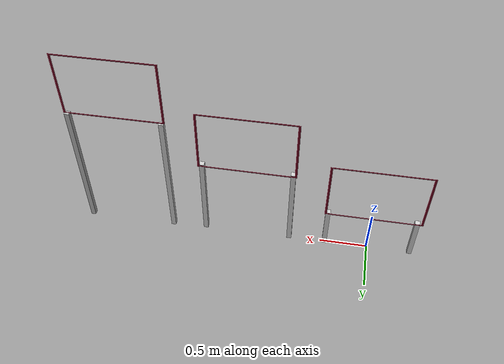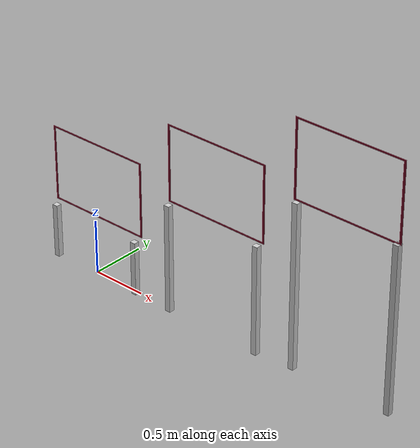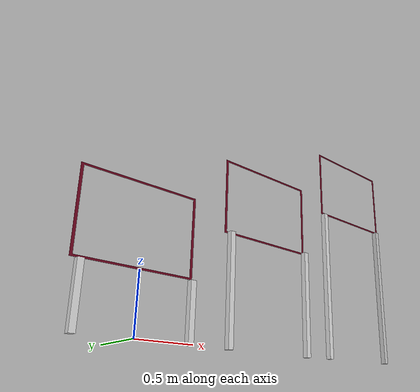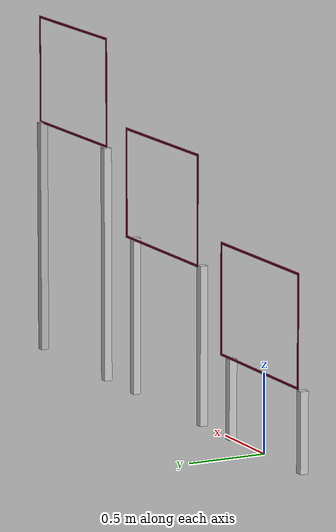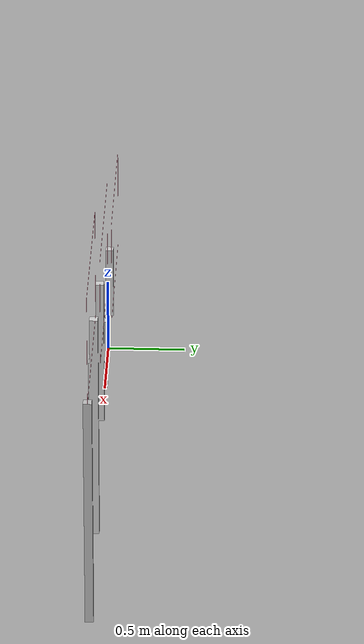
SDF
<?xml version="1.0"?>
<sdf version="1.6">
  <model name="race">
    <static>true</static>

    <link name="link">
      <visual name="visual">
        <geometry>
          <mesh>
          <uri>model://race/meshes/race.dae</uri>
          </mesh>
        </geometry>
      </visual>

      <collision name="collision">
        <geometry>
          <mesh>
            <uri>model://race/meshes/race.dae</uri>
          </mesh>
        </geometry>
      </collision>
    </link>
  </model>
</sdf>
